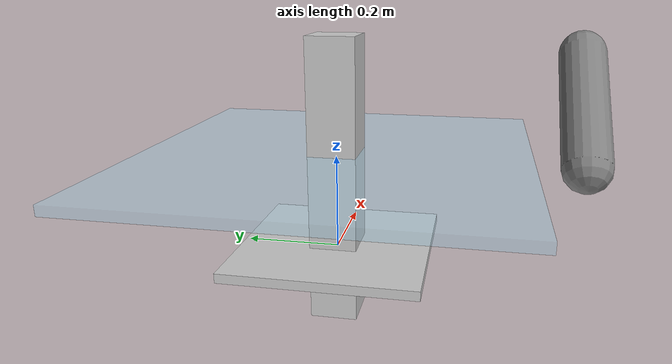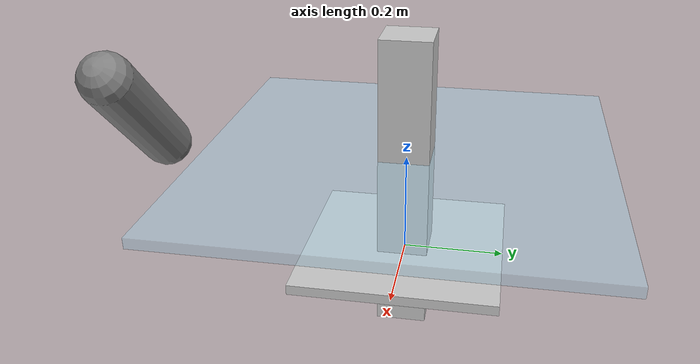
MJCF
<mujoco model="solar_panel_placement">

    <!-- Option settings -->
    <option timestep="0.01" gravity="0 0 -9.81"/>

    <!-- Default settings -->
    <default>
        <geom size="0.05"/>
        <joint damping="1"/>
    </default>

    <!-- Assets like material and textures -->
    <asset>
        <!-- Material for glass -->
        <material name="glass_material" rgba="0.7 0.9 1 0.4" specular="0.8" shininess="0.5"/>

        <!-- Material for steel -->
        <material name="steel_material" rgba="0.8 0.8 0.8 1" specular="0.9" shininess="1"/>
    </asset>

    <worldbody>
        <body name="steel_stand" pos="0 0 0">
            <geom type="box" size="0.2 0.2 0.01" material="steel_material"/>
            <geom type="box" size="0.05 0.05 0.3" material="steel_material" pos="0 0 0.15"/>
        </body>
        <body name="solar_panel" pos="0 0 0.2">
            <geom type="box" size="0.4 0.4 0.01" material="glass_material"/>
        </body>

        <body name="robot" pos="0 -0.5 0.2">
            <joint name="robot_slide" type="slide" axis="1 0 0"/>
            <geom type="capsule" fromto="0 0 0 0.2 0 0.2" size="0.05"/>
            <body name="end_effector" pos="0.2 0 0.2">
                <geom type="sphere" size="0.03"/>
                <joint name="end_effector_joint" type="ball"/>
            </body>
        </body>
    </worldbody>
</mujoco>
